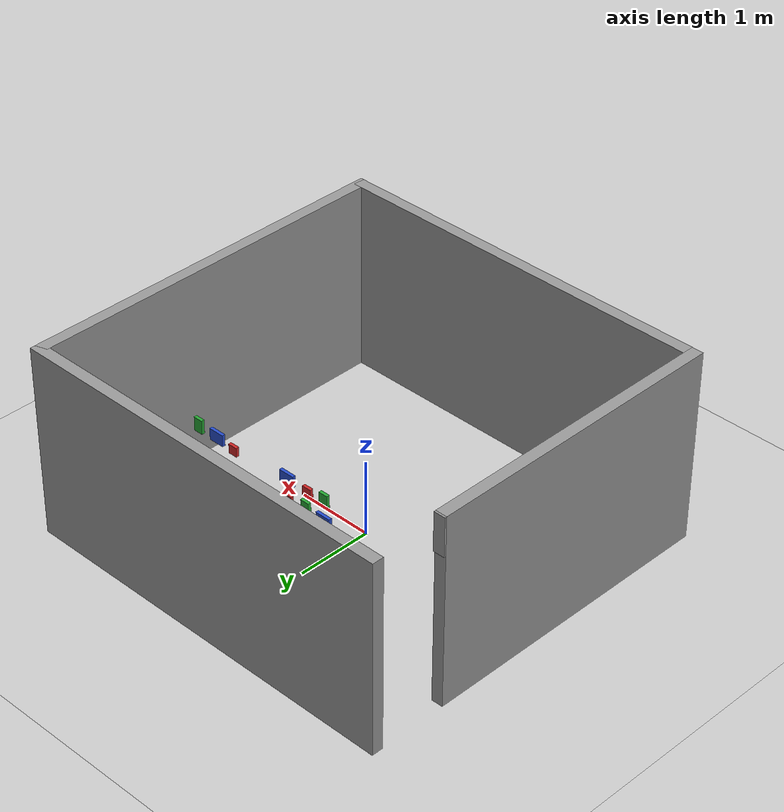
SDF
<sdf version="1.7">
 <world name="default">
  <light name="sun" type="directional">
   <pose>0 0 10 0 -0 0</pose>
   <diffuse>0.8 0.8 0.8 1</diffuse>
   <specular>0.2 0.2 0.2 1</specular>
   <attenuation>
    <range>1000</range>
    <constant>0.9</constant>
    <linear>0.01</linear>
    <quadratic>0.001</quadratic>
   </attenuation>
   <direction>-0.5 0.1 -0.9</direction>
   <spot><inner_angle>0</inner_angle><outer_angle>0</outer_angle><falloff>0</falloff></spot>
  </light>
  <model name="ground_plane">
   <static>1</static>
   <link name="link">
    <collision name="collision">
     <geometry><plane><normal>0 0 1</normal><size>100 100</size></plane></geometry>
     <surface>
      <contact><collide_bitmask>65535</collide_bitmask></contact>
      <friction><ode><mu>100</mu><mu2>50</mu2></ode></friction>
     </surface>
    </collision>
    <visual name="visual">
     <cast_shadows>0</cast_shadows>
     <geometry><plane><normal>0 0 1</normal><size>100 100</size></plane></geometry>
     <material>
      <script><uri>file://media/materials/scripts/gazebo.material</uri><name>Gazebo/Grey</name></script>
     </material>
    </visual>
   </link>
  </model>
  <gravity>0 0 -9.8</gravity>
  <magnetic_field>6e-06 2.3e-05 -4.2e-05</magnetic_field>
  <atmosphere type="adiabatic"/>
  <physics type="ode">
   <max_step_size>0.001</max_step_size>
   <real_time_factor>1</real_time_factor>
   <real_time_update_rate>1000</real_time_update_rate>
  </physics>
  <scene><ambient>0.4 0.4 0.4 1</ambient><background>0.7 0.7 0.7 1</background><shadows>1</shadows></scene>
  <spherical_coordinates>
   <surface_model>EARTH_WGS84</surface_model>
   <latitude_deg>0</latitude_deg>
   <longitude_deg>0</longitude_deg>
   <elevation>0</elevation>
   <heading_deg>0</heading_deg>
  </spherical_coordinates>
  <model name="box_green">
   <link name="link_1">
    <inertial>
     <mass>0.03</mass>
     <inertia><ixx>0.0005</ixx><ixy>0</ixy><ixz>0</ixz><iyy>0.0005</iyy><iyz>0</iyz><izz>0.0005</izz></inertia>
    </inertial>
    <visual name="visual">
     <geometry><box><size>0.04 0.12 0.18</size></box></geometry>
     <material>
      <lighting>1</lighting>
      <script><uri>file://media/materials/scripts/gazebo.material</uri><name>Gazebo/Green</name></script>
      <shader type="pixel"/>
     </material>
    </visual>
    <collision name="collision">
     <geometry><box><size>0.04 0.12 0.18</size></box></geometry>
     <surface>
      <friction>
       <ode><mu>1</mu><mu2>1</mu2><fdir1>0 0 0</fdir1><slip1>0</slip1><slip2>0</slip2></ode>
       <torsional>
        <coefficient>1</coefficient>
        <patch_radius>0</patch_radius>
        <surface_radius>0</surface_radius>
        <use_patch_radius>1</use_patch_radius>
        <ode><slip>0</slip></ode>
       </torsional>
      </friction>
      <bounce><restitution_coefficient>0</restitution_coefficient><threshold>1e+06</threshold></bounce>
      <contact>
       <collide_without_contact>0</collide_without_contact>
       <collide_without_contact_bitmask>1</collide_without_contact_bitmask>
       <collide_bitmask>1</collide_bitmask>
       <ode>
        <soft_cfm>0</soft_cfm>
        <soft_erp>0.2</soft_erp>
        <kp>1e+13</kp>
        <kd>1</kd>
        <max_vel>0.01</max_vel>
        <min_depth>0</min_depth>
       </ode>
       <bullet>
        <split_impulse>1</split_impulse>
        <split_impulse_penetration_threshold>-0.01</split_impulse_penetration_threshold>
        <soft_cfm>0</soft_cfm>
        <soft_erp>0.2</soft_erp>
        <kp>1e+13</kp>
        <kd>1</kd>
       </bullet>
      </contact>
     </surface>
    </collision>
   </link>
   <static>0</static>
   <pose>-0.589944 1.21694 1.46994 1.7e-05 1e-06 -1.56411</pose>
  </model>
  <model name="box_red">
   <link name="link_1">
    <inertial>
     <mass>0.03</mass>
     <inertia><ixx>0.0005</ixx><ixy>0</ixy><ixz>0</ixz><iyy>0.0005</iyy><iyz>0</iyz><izz>0.0005</izz></inertia>
    </inertial>
    <visual name="visual">
     <geometry><box><size>0.04 0.12 0.12</size></box></geometry>
     <material>
      <lighting>1</lighting>
      <script><uri>file://media/materials/scripts/gazebo.material</uri><name>Gazebo/Red</name></script>
      <shader type="pixel"/>
     </material>
    </visual>
    <collision name="collision">
     <geometry><box><size>0.04 0.12 0.12</size></box></geometry>
     <surface>
      <friction>
       <ode><mu>1</mu><mu2>1</mu2><fdir1>0 0 0</fdir1><slip1>0</slip1><slip2>0</slip2></ode>
       <torsional>
        <coefficient>1</coefficient>
        <patch_radius>0</patch_radius>
        <surface_radius>0</surface_radius>
        <use_patch_radius>1</use_patch_radius>
        <ode><slip>0</slip></ode>
       </torsional>
      </friction>
      <bounce><restitution_coefficient>0</restitution_coefficient><threshold>1e+06</threshold></bounce>
      <contact>
       <collide_without_contact>0</collide_without_contact>
       <collide_without_contact_bitmask>1</collide_without_contact_bitmask>
       <collide_bitmask>1</collide_bitmask>
       <ode>
        <soft_cfm>0</soft_cfm>
        <soft_erp>0.2</soft_erp>
        <kp>1e+13</kp>
        <kd>1</kd>
        <max_vel>0.01</max_vel>
        <min_depth>0</min_depth>
       </ode>
       <bullet>
        <split_impulse>1</split_impulse>
        <split_impulse_penetration_threshold>-0.01</split_impulse_penetration_threshold>
        <soft_cfm>0</soft_cfm>
        <soft_erp>0.2</soft_erp>
        <kp>1e+13</kp>
        <kd>1</kd>
       </bullet>
      </contact>
     </surface>
    </collision>
   </link>
   <static>0</static>
   <pose>-0.030499 1.20902 1.18 1.6e-05 -0 -1.5703</pose>
  </model>
  <model name="box_blue">
   <link name="link_1">
    <inertial>
     <mass>0.03</mass>
     <inertia><ixx>0.0005</ixx><ixy>0</ixy><ixz>0</ixz><iyy>0.0005</iyy><iyz>0</iyz><izz>0.0005</izz></inertia>
    </inertial>
    <visual name="visual">
     <geometry><box><size>0.04 0.2 0.15</size></box></geometry>
     <material>
      <lighting>1</lighting>
      <script><uri>file://media/materials/scripts/gazebo.material</uri><name>Gazebo/Blue</name></script>
      <shader type="pixel"/>
     </material>
    </visual>
    <collision name="collision">
     <geometry><box><size>0.04 0.2 0.15</size></box></geometry>
     <surface>
      <friction>
       <ode><mu>1</mu><mu2>1</mu2><fdir1>0 0 0</fdir1><slip1>0</slip1><slip2>0</slip2></ode>
       <torsional>
        <coefficient>1</coefficient>
        <patch_radius>0</patch_radius>
        <surface_radius>0</surface_radius>
        <use_patch_radius>1</use_patch_radius>
        <ode><slip>0</slip></ode>
       </torsional>
      </friction>
      <bounce><restitution_coefficient>0</restitution_coefficient><threshold>1e+06</threshold></bounce>
      <contact>
       <collide_without_contact>0</collide_without_contact>
       <collide_without_contact_bitmask>1</collide_without_contact_bitmask>
       <collide_bitmask>1</collide_bitmask>
       <ode>
        <soft_cfm>0</soft_cfm>
        <soft_erp>0.2</soft_erp>
        <kp>1e+13</kp>
        <kd>1</kd>
        <max_vel>0.01</max_vel>
        <min_depth>0</min_depth>
       </ode>
       <bullet>
        <split_impulse>1</split_impulse>
        <split_impulse_penetration_threshold>-0.01</split_impulse_penetration_threshold>
        <soft_cfm>0</soft_cfm>
        <soft_erp>0.2</soft_erp>
        <kp>1e+13</kp>
        <kd>1</kd>
       </bullet>
      </contact>
     </surface>
    </collision>
   </link>
   <static>0</static>
   <pose>-0.581975 1.22035 1.19494 1.7e-05 1e-06 -1.57008</pose>
  </model>
  <model name="box_blue_clone">
   <link name="link_1">
    <inertial>
     <mass>0.03</mass>
     <inertia><ixx>0.0005</ixx><ixy>0</ixy><ixz>0</ixz><iyy>0.0005</iyy><iyz>0</iyz><izz>0.0005</izz></inertia>
    </inertial>
    <visual name="visual">
     <geometry><box><size>0.04 0.2 0.15</size></box></geometry>
     <material>
      <lighting>1</lighting>
      <script><uri>file://media/materials/scripts/gazebo.material</uri><name>Gazebo/Blue</name></script>
      <shader type="pixel"/>
     </material>
    </visual>
    <collision name="collision">
     <geometry><box><size>0.04 0.2 0.15</size></box></geometry>
     <surface>
      <friction>
       <ode><mu>1</mu><mu2>1</mu2><fdir1>0 0 0</fdir1><slip1>0</slip1><slip2>0</slip2></ode>
       <torsional>
        <coefficient>1</coefficient>
        <patch_radius>0</patch_radius>
        <surface_radius>0</surface_radius>
        <use_patch_radius>1</use_patch_radius>
        <ode><slip>0</slip></ode>
       </torsional>
      </friction>
      <bounce><restitution_coefficient>0</restitution_coefficient><threshold>1e+06</threshold></bounce>
      <contact>
       <collide_without_contact>0</collide_without_contact>
       <collide_without_contact_bitmask>1</collide_without_contact_bitmask>
       <collide_bitmask>1</collide_bitmask>
       <ode>
        <soft_cfm>0</soft_cfm>
        <soft_erp>0.2</soft_erp>
        <kp>1e+13</kp>
        <kd>1</kd>
        <max_vel>0.01</max_vel>
        <min_depth>0</min_depth>
       </ode>
       <bullet>
        <split_impulse>1</split_impulse>
        <split_impulse_penetration_threshold>-0.01</split_impulse_penetration_threshold>
        <soft_cfm>0</soft_cfm>
        <soft_erp>0.2</soft_erp>
        <kp>1e+13</kp>
        <kd>1</kd>
       </bullet>
      </contact>
     </surface>
    </collision>
   </link>
   <static>0</static>
   <pose>-0.022338 1.20952 1.45495 1.6e-05 1e-06 -1.56437</pose>
  </model>
  <model name="box_green_clone">
   <link name="link_1">
    <inertial>
     <mass>0.03</mass>
     <inertia><ixx>0.0005</ixx><ixy>0</ixy><ixz>0</ixz><iyy>0.0005</iyy><iyz>0</iyz><izz>0.0005</izz></inertia>
    </inertial>
    <visual name="visual">
     <geometry><box><size>0.04 0.12 0.18</size></box></geometry>
     <material>
      <lighting>1</lighting>
      <script><uri>file://media/materials/scripts/gazebo.material</uri><name>Gazebo/Green</name></script>
      <shader type="pixel"/>
     </material>
    </visual>
    <collision name="collision">
     <geometry><box><size>0.04 0.12 0.18</size></box></geometry>
     <surface>
      <friction>
       <ode><mu>1</mu><mu2>1</mu2><fdir1>0 0 0</fdir1><slip1>0</slip1><slip2>0</slip2></ode>
       <torsional>
        <coefficient>1</coefficient>
        <patch_radius>0</patch_radius>
        <surface_radius>0</surface_radius>
        <use_patch_radius>1</use_patch_radius>
        <ode><slip>0</slip></ode>
       </torsional>
      </friction>
      <bounce><restitution_coefficient>0</restitution_coefficient><threshold>1e+06</threshold></bounce>
      <contact>
       <collide_without_contact>0</collide_without_contact>
       <collide_without_contact_bitmask>1</collide_without_contact_bitmask>
       <collide_bitmask>1</collide_bitmask>
       <ode>
        <soft_cfm>0</soft_cfm>
        <soft_erp>0.2</soft_erp>
        <kp>1e+13</kp>
        <kd>1</kd>
        <max_vel>0.01</max_vel>
        <min_depth>0</min_depth>
       </ode>
       <bullet>
        <split_impulse>1</split_impulse>
        <split_impulse_penetration_threshold>-0.01</split_impulse_penetration_threshold>
        <soft_cfm>0</soft_cfm>
        <soft_erp>0.2</soft_erp>
        <kp>1e+13</kp>
        <kd>1</kd>
       </bullet>
      </contact>
     </surface>
    </collision>
   </link>
   <static>0</static>
   <pose>-0.30088 1.21199 1.20994 1.6e-05 1e-06 -1.57176</pose>
  </model>
  <model name="box_red_clone">
   <link name="link_1">
    <inertial>
     <mass>0.03</mass>
     <inertia><ixx>0.0005</ixx><ixy>0</ixy><ixz>0</ixz><iyy>0.0005</iyy><iyz>0</iyz><izz>0.0005</izz></inertia>
    </inertial>
    <visual name="visual">
     <geometry><box><size>0.04 0.12 0.12</size></box></geometry>
     <material>
      <lighting>1</lighting>
      <script><uri>file://media/materials/scripts/gazebo.material</uri><name>Gazebo/Red</name></script>
      <shader type="pixel"/>
     </material>
    </visual>
    <collision name="collision">
     <geometry><box><size>0.04 0.12 0.12</size></box></geometry>
     <surface>
      <friction>
       <ode><mu>1</mu><mu2>1</mu2><fdir1>0 0 0</fdir1><slip1>0</slip1><slip2>0</slip2></ode>
       <torsional>
        <coefficient>1</coefficient>
        <patch_radius>0</patch_radius>
        <surface_radius>0</surface_radius>
        <use_patch_radius>1</use_patch_radius>
        <ode><slip>0</slip></ode>
       </torsional>
      </friction>
      <bounce><restitution_coefficient>0</restitution_coefficient><threshold>1e+06</threshold></bounce>
      <contact>
       <collide_without_contact>0</collide_without_contact>
       <collide_without_contact_bitmask>1</collide_without_contact_bitmask>
       <collide_bitmask>1</collide_bitmask>
       <ode>
        <soft_cfm>0</soft_cfm>
        <soft_erp>0.2</soft_erp>
        <kp>1e+13</kp>
        <kd>1</kd>
        <max_vel>0.01</max_vel>
        <min_depth>0</min_depth>
       </ode>
       <bullet>
        <split_impulse>1</split_impulse>
        <split_impulse_penetration_threshold>-0.01</split_impulse_penetration_threshold>
        <soft_cfm>0</soft_cfm>
        <soft_erp>0.2</soft_erp>
        <kp>1e+13</kp>
        <kd>1</kd>
       </bullet>
      </contact>
     </surface>
    </collision>
   </link>
   <static>0</static>
   <pose>-0.331622 1.21 1.43994 1.6e-05 1e-06 -1.54762</pose>
  </model>
  <model name="Arena">
   <pose>0 0 0 0 0 -1.5707</pose>
   <link name="Wall_10">
    <collision name="Wall_10_Collision">
     <geometry><box><size>5 0.15 2.5</size></box></geometry>
     <pose>0 0 1.25 0 -0 0</pose>
    </collision>
    <visual name="Wall_10_Visual">
     <pose>0 0 1.25 0 -0 0</pose>
     <geometry><box><size>5 0.15 2.5</size></box></geometry>
     <material>
      <script><uri>file://media/materials/scripts/gazebo.material</uri><name>Gazebo/Grey</name></script>
      <ambient>1 1 1 1</ambient>
     </material>
     <meta><layer>0</layer></meta>
    </visual>
    <pose>0 2.5 0 0 -0 0</pose>
   </link>
   <link name="Wall_11">
    <collision name="Wall_11_Collision">
     <geometry><box><size>5.15 0.15 2.5</size></box></geometry>
     <pose>0 0 1.25 0 -0 0</pose>
    </collision>
    <visual name="Wall_11_Visual">
     <pose>0 0 1.25 0 -0 0</pose>
     <geometry><box><size>5.15 0.15 2.5</size></box></geometry>
     <material>
      <script><uri>file://media/materials/scripts/gazebo.material</uri><name>Gazebo/Grey</name></script>
      <ambient>1 1 1 1</ambient>
     </material>
     <meta><layer>0</layer></meta>
    </visual>
    <pose>2.425 0 0 0 -0 -1.5708</pose>
   </link>
   <link name="Wall_14">
    <pose>0.5 -2.5 0 0 -0 3.14159</pose>
    <visual name="Wall_14_Visual_0">
     <pose>-0.0125 0 1.25 0 -0 0</pose>
     <geometry><box><size>3.975 0.15 2.5</size></box></geometry>
     <material>
      <script><uri>file://media/materials/scripts/gazebo.material</uri><name>Gazebo/Grey</name></script>
      <ambient>1 1 1 1</ambient>
     </material>
     <meta><layer>0</layer></meta>
    </visual>
    <collision name="Wall_14_Collision_0">
     <geometry><box><size>3.975 0.15 2.5</size></box></geometry>
     <pose>-0.0125 0 1.25 0 -0 0</pose>
    </collision>
    <visual name="Wall_14_Visual_1">
     <pose>1.9875 0 2.25 0 -0 0</pose>
     <geometry><box><size>0.025 0.15 0.5</size></box></geometry>
     <material>
      <script><uri>file://media/materials/scripts/gazebo.material</uri><name>Gazebo/Grey</name></script>
      <ambient>1 1 1 1</ambient>
     </material>
     <meta><layer>0</layer></meta>
    </visual>
    <collision name="Wall_14_Collision_1">
     <geometry><box><size>0.025 0.15 0.5</size></box></geometry>
     <pose>1.9875 0 2.25 0 -0 0</pose>
    </collision>
   </link>
   <link name="Wall_8">
    <collision name="Wall_8_Collision">
     <geometry><box><size>5.15 0.15 2.5</size></box></geometry>
     <pose>0 0 1.25 0 -0 0</pose>
    </collision>
    <visual name="Wall_8_Visual">
     <pose>0 0 1.25 0 -0 0</pose>
     <geometry><box><size>5.15 0.15 2.5</size></box></geometry>
     <material>
      <script><uri>file://media/materials/scripts/gazebo.material</uri><name>Gazebo/Grey</name></script>
      <ambient>1 1 1 1</ambient>
     </material>
     <meta><layer>0</layer></meta>
    </visual>
    <pose>-2.425 0 0 0 -0 1.5708</pose>
   </link>
   <static>1</static>
  </model>
  <model name="box_blue_clone_0">
   <link name="link_1">
    <inertial>
     <mass>0.03</mass>
     <inertia><ixx>0.0005</ixx><ixy>0</ixy><ixz>0</ixz><iyy>0.0005</iyy><iyz>0</iyz><izz>0.0005</izz></inertia>
    </inertial>
    <visual name="visual">
     <geometry><box><size>0.04 0.2 0.15</size></box></geometry>
     <material>
      <lighting>1</lighting>
      <script><uri>file://media/materials/scripts/gazebo.material</uri><name>Gazebo/Blue</name></script>
      <shader type="pixel"/>
     </material>
    </visual>
    <collision name="collision">
     <geometry><box><size>0.04 0.2 0.15</size></box></geometry>
     <surface>
      <friction>
       <ode><mu>1</mu><mu2>1</mu2><fdir1>0 0 0</fdir1><slip1>0</slip1><slip2>0</slip2></ode>
       <torsional>
        <coefficient>1</coefficient>
        <patch_radius>0</patch_radius>
        <surface_radius>0</surface_radius>
        <use_patch_radius>1</use_patch_radius>
        <ode><slip>0</slip></ode>
       </torsional>
      </friction>
      <bounce><restitution_coefficient>0</restitution_coefficient><threshold>1e+06</threshold></bounce>
      <contact>
       <collide_without_contact>0</collide_without_contact>
       <collide_without_contact_bitmask>1</collide_without_contact_bitmask>
       <collide_bitmask>1</collide_bitmask>
       <ode>
        <soft_cfm>0</soft_cfm>
        <soft_erp>0.2</soft_erp>
        <kp>1e+13</kp>
        <kd>1</kd>
        <max_vel>0.01</max_vel>
        <min_depth>0</min_depth>
       </ode>
       <bullet>
        <split_impulse>1</split_impulse>
        <split_impulse_penetration_threshold>-0.01</split_impulse_penetration_threshold>
        <soft_cfm>0</soft_cfm>
        <soft_erp>0.2</soft_erp>
        <kp>1e+13</kp>
        <kd>1</kd>
       </bullet>
      </contact>
     </surface>
    </collision>
   </link>
   <static>0</static>
   <pose>1.32607 1.22228 0.93498 0 0 -1.5728</pose>
  </model>
  <model name="box_red_clone_0">
   <link name="link_1">
    <inertial>
     <mass>0.03</mass>
     <inertia><ixx>0.0005</ixx><ixy>0</ixy><ixz>0</ixz><iyy>0.0005</iyy><iyz>0</iyz><izz>0.0005</izz></inertia>
    </inertial>
    <visual name="visual">
     <geometry><box><size>0.04 0.12 0.12</size></box></geometry>
     <material>
      <lighting>1</lighting>
      <script><uri>file://media/materials/scripts/gazebo.material</uri><name>Gazebo/Red</name></script>
      <shader type="pixel"/>
     </material>
    </visual>
    <collision name="collision">
     <geometry><box><size>0.04 0.12 0.12</size></box></geometry>
     <surface>
      <friction>
       <ode><mu>1</mu><mu2>1</mu2><fdir1>0 0 0</fdir1><slip1>0</slip1><slip2>0</slip2></ode>
       <torsional>
        <coefficient>1</coefficient>
        <patch_radius>0</patch_radius>
        <surface_radius>0</surface_radius>
        <use_patch_radius>1</use_patch_radius>
        <ode><slip>0</slip></ode>
       </torsional>
      </friction>
      <bounce><restitution_coefficient>0</restitution_coefficient><threshold>1e+06</threshold></bounce>
      <contact>
       <collide_without_contact>0</collide_without_contact>
       <collide_without_contact_bitmask>1</collide_without_contact_bitmask>
       <collide_bitmask>1</collide_bitmask>
       <ode>
        <soft_cfm>0</soft_cfm>
        <soft_erp>0.2</soft_erp>
        <kp>1e+13</kp>
        <kd>1</kd>
        <max_vel>0.01</max_vel>
        <min_depth>0</min_depth>
       </ode>
       <bullet>
        <split_impulse>1</split_impulse>
        <split_impulse_penetration_threshold>-0.01</split_impulse_penetration_threshold>
        <soft_cfm>0</soft_cfm>
        <soft_erp>0.2</soft_erp>
        <kp>1e+13</kp>
        <kd>1</kd>
       </bullet>
      </contact>
     </surface>
    </collision>
   </link>
   <static>0</static>
   <pose>0.763246 1.25919 1.43997 4e-06 1e-06 -1.57008</pose>
  </model>
  <model name="box_green_clone_0">
   <link name="link_1">
    <inertial>
     <mass>0.03</mass>
     <inertia><ixx>0.0005</ixx><ixy>0</ixy><ixz>0</ixz><iyy>0.0005</iyy><iyz>0</iyz><izz>0.0005</izz></inertia>
    </inertial>
    <visual name="visual">
     <geometry><box><size>0.04 0.12 0.18</size></box></geometry>
     <material>
      <lighting>1</lighting>
      <script><uri>file://media/materials/scripts/gazebo.material</uri><name>Gazebo/Green</name></script>
      <shader type="pixel"/>
     </material>
    </visual>
    <collision name="collision">
     <geometry><box><size>0.04 0.12 0.18</size></box></geometry>
     <surface>
      <friction>
       <ode><mu>1</mu><mu2>1</mu2><fdir1>0 0 0</fdir1><slip1>0</slip1><slip2>0</slip2></ode>
       <torsional>
        <coefficient>1</coefficient>
        <patch_radius>0</patch_radius>
        <surface_radius>0</surface_radius>
        <use_patch_radius>1</use_patch_radius>
        <ode><slip>0</slip></ode>
       </torsional>
      </friction>
      <bounce><restitution_coefficient>0</restitution_coefficient><threshold>1e+06</threshold></bounce>
      <contact>
       <collide_without_contact>0</collide_without_contact>
       <collide_without_contact_bitmask>1</collide_without_contact_bitmask>
       <collide_bitmask>1</collide_bitmask>
       <ode>
        <soft_cfm>0</soft_cfm>
        <soft_erp>0.2</soft_erp>
        <kp>1e+13</kp>
        <kd>1</kd>
        <max_vel>0.01</max_vel>
        <min_depth>0</min_depth>
       </ode>
       <bullet>
        <split_impulse>1</split_impulse>
        <split_impulse_penetration_threshold>-0.01</split_impulse_penetration_threshold>
        <soft_cfm>0</soft_cfm>
        <soft_erp>0.2</soft_erp>
        <kp>1e+13</kp>
        <kd>1</kd>
       </bullet>
      </contact>
     </surface>
    </collision>
   </link>
   <static>0</static>
   <pose>0.760022 1.22876 0.94998 0 -4e-06 -1.57195</pose>
  </model>
  <model name="box_green_clone_1">
   <link name="link_1">
    <inertial>
     <mass>0.03</mass>
     <inertia><ixx>0.0005</ixx><ixy>0</ixy><ixz>0</ixz><iyy>0.0005</iyy><iyz>0</iyz><izz>0.0005</izz></inertia>
    </inertial>
    <visual name="visual">
     <geometry><box><size>0.04 0.12 0.18</size></box></geometry>
     <material>
      <lighting>1</lighting>
      <script><uri>file://media/materials/scripts/gazebo.material</uri><name>Gazebo/Green</name></script>
      <shader type="pixel"/>
     </material>
    </visual>
    <collision name="collision">
     <geometry><box><size>0.04 0.12 0.18</size></box></geometry>
     <surface>
      <friction>
       <ode><mu>1</mu><mu2>1</mu2><fdir1>0 0 0</fdir1><slip1>0</slip1><slip2>0</slip2></ode>
       <torsional>
        <coefficient>1</coefficient>
        <patch_radius>0</patch_radius>
        <surface_radius>0</surface_radius>
        <use_patch_radius>1</use_patch_radius>
        <ode><slip>0</slip></ode>
       </torsional>
      </friction>
      <bounce><restitution_coefficient>0</restitution_coefficient><threshold>1e+06</threshold></bounce>
      <contact>
       <collide_without_contact>0</collide_without_contact>
       <collide_without_contact_bitmask>1</collide_without_contact_bitmask>
       <collide_bitmask>1</collide_bitmask>
       <ode>
        <soft_cfm>0</soft_cfm>
        <soft_erp>0.2</soft_erp>
        <kp>1e+13</kp>
        <kd>1</kd>
        <max_vel>0.01</max_vel>
        <min_depth>0</min_depth>
       </ode>
       <bullet>
        <split_impulse>1</split_impulse>
        <split_impulse_penetration_threshold>-0.01</split_impulse_penetration_threshold>
        <soft_cfm>0</soft_cfm>
        <soft_erp>0.2</soft_erp>
        <kp>1e+13</kp>
        <kd>1</kd>
       </bullet>
      </contact>
     </surface>
    </collision>
   </link>
   <static>0</static>
   <pose>1.33478 1.24224 1.46998 0 0 -1.56955</pose>
  </model>
  <model name="box_red_clone_0_clone">
   <link name="link_1">
    <inertial>
     <mass>0.03</mass>
     <inertia><ixx>0.0005</ixx><ixy>0</ixy><ixz>0</ixz><iyy>0.0005</iyy><iyz>0</iyz><izz>0.0005</izz></inertia>
    </inertial>
    <visual name="visual">
     <geometry><box><size>0.04 0.12 0.12</size></box></geometry>
     <material>
      <lighting>1</lighting>
      <script><uri>file://media/materials/scripts/gazebo.material</uri><name>Gazebo/Red</name></script>
      <shader type="pixel"/>
     </material>
    </visual>
    <collision name="collision">
     <geometry><box><size>0.04 0.12 0.12</size></box></geometry>
     <surface>
      <friction>
       <ode><mu>1</mu><mu2>1</mu2><fdir1>0 0 0</fdir1><slip1>0</slip1><slip2>0</slip2></ode>
       <torsional>
        <coefficient>1</coefficient>
        <patch_radius>0</patch_radius>
        <surface_radius>0</surface_radius>
        <use_patch_radius>1</use_patch_radius>
        <ode><slip>0</slip></ode>
       </torsional>
      </friction>
      <bounce><restitution_coefficient>0</restitution_coefficient><threshold>1e+06</threshold></bounce>
      <contact>
       <collide_without_contact>0</collide_without_contact>
       <collide_without_contact_bitmask>1</collide_without_contact_bitmask>
       <collide_bitmask>1</collide_bitmask>
       <ode>
        <soft_cfm>0</soft_cfm>
        <soft_erp>0.2</soft_erp>
        <kp>1e+13</kp>
        <kd>1</kd>
        <max_vel>0.01</max_vel>
        <min_depth>0</min_depth>
       </ode>
       <bullet>
        <split_impulse>1</split_impulse>
        <split_impulse_penetration_threshold>-0.01</split_impulse_penetration_threshold>
        <soft_cfm>0</soft_cfm>
        <soft_erp>0.2</soft_erp>
        <kp>1e+13</kp>
        <kd>1</kd>
       </bullet>
      </contact>
     </surface>
    </collision>
   </link>
   <static>0</static>
   <pose>1.04714 1.24554 0.91997 0 -2e-06 -1.5701</pose>
  </model>
  <model name="box_blue_clone_0_clone">
   <link name="link_1">
    <inertial>
     <mass>0.03</mass>
     <inertia><ixx>0.0005</ixx><ixy>0</ixy><ixz>0</ixz><iyy>0.0005</iyy><iyz>0</iyz><izz>0.0005</izz></inertia>
    </inertial>
    <visual name="visual">
     <geometry><box><size>0.04 0.2 0.15</size></box></geometry>
     <material>
      <lighting>1</lighting>
      <script><uri>file://media/materials/scripts/gazebo.material</uri><name>Gazebo/Blue</name></script>
      <shader type="pixel"/>
     </material>
    </visual>
    <collision name="collision">
     <geometry><box><size>0.04 0.2 0.15</size></box></geometry>
     <surface>
      <friction>
       <ode><mu>1</mu><mu2>1</mu2><fdir1>0 0 0</fdir1><slip1>0</slip1><slip2>0</slip2></ode>
       <torsional>
        <coefficient>1</coefficient>
        <patch_radius>0</patch_radius>
        <surface_radius>0</surface_radius>
        <use_patch_radius>1</use_patch_radius>
        <ode><slip>0</slip></ode>
       </torsional>
      </friction>
      <bounce><restitution_coefficient>0</restitution_coefficient><threshold>1e+06</threshold></bounce>
      <contact>
       <collide_without_contact>0</collide_without_contact>
       <collide_without_contact_bitmask>1</collide_without_contact_bitmask>
       <collide_bitmask>1</collide_bitmask>
       <ode>
        <soft_cfm>0</soft_cfm>
        <soft_erp>0.2</soft_erp>
        <kp>1e+13</kp>
        <kd>1</kd>
        <max_vel>0.01</max_vel>
        <min_depth>0</min_depth>
       </ode>
       <bullet>
        <split_impulse>1</split_impulse>
        <split_impulse_penetration_threshold>-0.01</split_impulse_penetration_threshold>
        <soft_cfm>0</soft_cfm>
        <soft_erp>0.2</soft_erp>
        <kp>1e+13</kp>
        <kd>1</kd>
       </bullet>
      </contact>
     </surface>
    </collision>
   </link>
   <static>0</static>
   <pose>1.04958 1.23634 1.45497 -2e-06 1e-06 -1.56376</pose>
  </model>
 </world>
</sdf>
